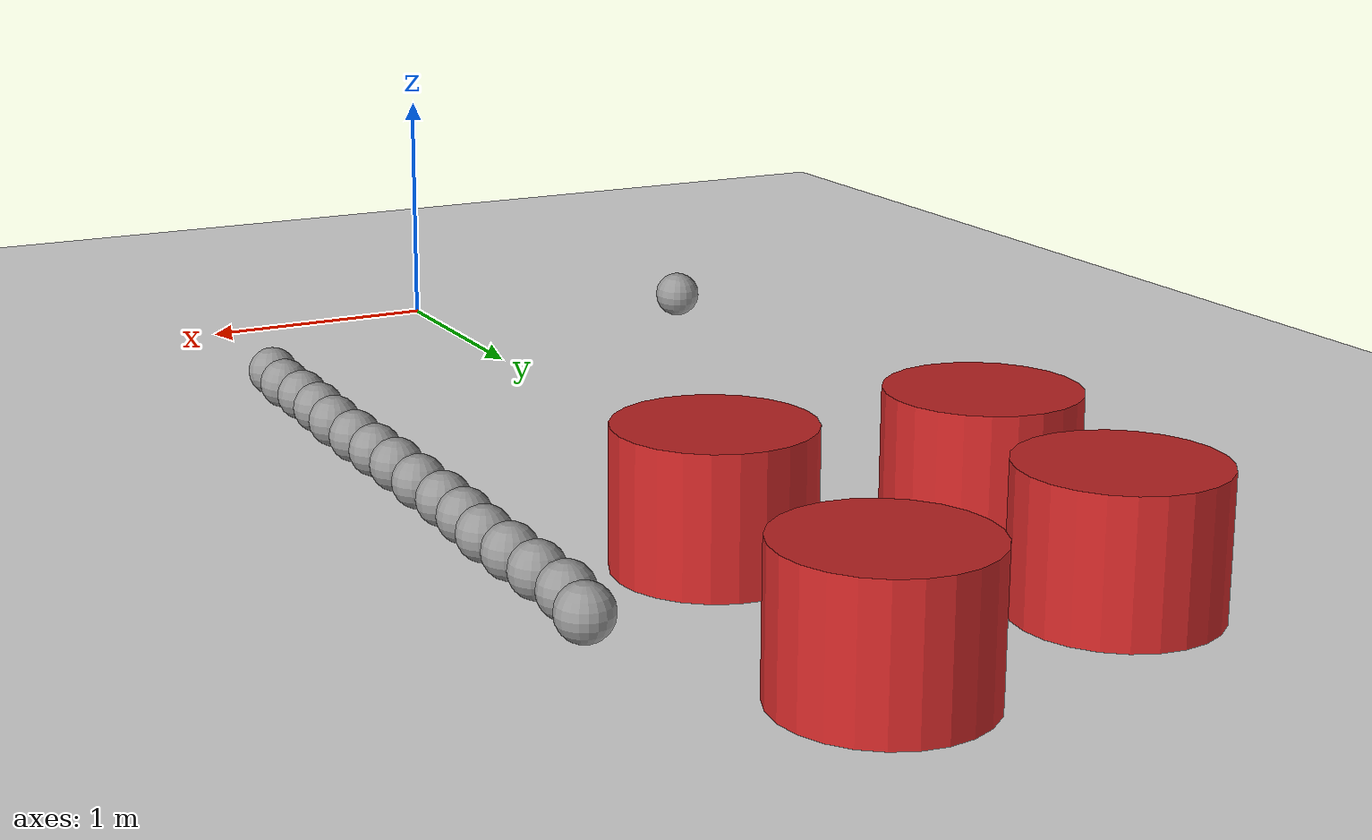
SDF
<sdf version="1.7">
 <world name="default">
  <model name="ground_plane">
   <static>1</static>
   <link name="link">
    <collision name="collision">
     <geometry><plane><normal>0 0 1</normal><size>100 100</size></plane></geometry>
     <surface>
      <contact><collide_bitmask>65535</collide_bitmask></contact>
      <friction><ode><mu>100</mu><mu2>50</mu2></ode></friction>
     </surface>
    </collision>
    <visual name="visual">
     <cast_shadows>0</cast_shadows>
     <geometry><plane><normal>0 0 1</normal><size>100 100</size></plane></geometry>
     <material>
      <script><uri>file://media/materials/scripts/gazebo.material</uri><name>Gazebo/White</name></script>
     </material>
    </visual>
   </link>
  </model>
  <model name="sphere_2">
   <link name="link_0">
    <inertial>
     <mass>1</mass>
     <inertia><ixx>0.1</ixx><ixy>0</ixy><ixz>0</ixz><iyy>0.1</iyy><iyz>0</iyz><izz>0.1</izz></inertia>
    </inertial>
    <visual name="visual">
     <geometry><sphere><radius>0.1</radius></sphere></geometry>
     <material>
      <lighting>1</lighting>
      <script><uri>file://media/materials/scripts/gazebo.material</uri><name>Gazebo/Grey</name></script>
      <shader type="pixel"><normal_map>__default__</normal_map></shader>
      <ambient>0.3 0.3 0.3 1</ambient>
      <diffuse>0.7 0.7 0.7 1</diffuse>
      <specular>0.01 0.01 0.01 1</specular>
      <emissive>0 0 0 1</emissive>
     </material>
    </visual>
    <collision name="collision">
     <geometry><sphere><radius>0.1</radius></sphere></geometry>
     <surface>
      <friction>
       <ode><mu>1</mu><mu2>1</mu2><fdir1>0 0 0</fdir1><slip1>0</slip1><slip2>0</slip2></ode>
       <torsional>
        <coefficient>1</coefficient>
        <patch_radius>0</patch_radius>
        <surface_radius>0</surface_radius>
        <use_patch_radius>1</use_patch_radius>
        <ode><slip>0</slip></ode>
       </torsional>
      </friction>
      <bounce><restitution_coefficient>0</restitution_coefficient><threshold>1e+06</threshold></bounce>
      <contact>
       <collide_without_contact>0</collide_without_contact>
       <collide_without_contact_bitmask>1</collide_without_contact_bitmask>
       <collide_bitmask>1</collide_bitmask>
       <ode>
        <soft_cfm>0</soft_cfm>
        <soft_erp>0.2</soft_erp>
        <kp>1e+13</kp>
        <kd>1</kd>
        <max_vel>0.01</max_vel>
        <min_depth>0</min_depth>
       </ode>
       <bullet>
        <split_impulse>1</split_impulse>
        <split_impulse_penetration_threshold>-0.01</split_impulse_penetration_threshold>
        <soft_cfm>0</soft_cfm>
        <soft_erp>0.2</soft_erp>
        <kp>1e+13</kp>
        <kd>1</kd>
       </bullet>
      </contact>
     </surface>
    </collision>
   </link>
   <static>0</static>
   <pose>-1.08295 0.60761 0.1 -0.067159 0.002545 0.001841</pose>
  </model>
  <model name="sphere_65">
   <link name="link_0">
    <inertial>
     <mass>1</mass>
     <inertia><ixx>0.1</ixx><ixy>0</ixy><ixz>0</ixz><iyy>0.1</iyy><iyz>0</iyz><izz>0.1</izz></inertia>
    </inertial>
    <visual name="visual">
     <geometry><sphere><radius>0.1</radius></sphere></geometry>
     <material>
      <lighting>1</lighting>
      <script><uri>file://media/materials/scripts/gazebo.material</uri><name>Gazebo/Grey</name></script>
      <shader type="pixel"><normal_map>__default__</normal_map></shader>
      <ambient>0.3 0.3 0.3 1</ambient>
      <diffuse>0.7 0.7 0.7 1</diffuse>
      <specular>0.01 0.01 0.01 1</specular>
      <emissive>0 0 0 1</emissive>
     </material>
    </visual>
    <collision name="collision">
     <geometry><sphere><radius>0.1</radius></sphere></geometry>
     <surface>
      <friction>
       <ode><mu>1</mu><mu2>1</mu2><fdir1>0 0 0</fdir1><slip1>0</slip1><slip2>0</slip2></ode>
       <torsional>
        <coefficient>1</coefficient>
        <patch_radius>0</patch_radius>
        <surface_radius>0</surface_radius>
        <use_patch_radius>1</use_patch_radius>
        <ode><slip>0</slip></ode>
       </torsional>
      </friction>
      <bounce><restitution_coefficient>0</restitution_coefficient><threshold>1e+06</threshold></bounce>
      <contact>
       <collide_without_contact>0</collide_without_contact>
       <collide_without_contact_bitmask>1</collide_without_contact_bitmask>
       <collide_bitmask>1</collide_bitmask>
       <ode>
        <soft_cfm>0</soft_cfm>
        <soft_erp>0.2</soft_erp>
        <kp>1e+13</kp>
        <kd>1</kd>
        <max_vel>0.01</max_vel>
        <min_depth>0</min_depth>
       </ode>
       <bullet>
        <split_impulse>1</split_impulse>
        <split_impulse_penetration_threshold>-0.01</split_impulse_penetration_threshold>
        <soft_cfm>0</soft_cfm>
        <soft_erp>0.2</soft_erp>
        <kp>1e+13</kp>
        <kd>1</kd>
       </bullet>
      </contact>
     </surface>
    </collision>
   </link>
   <static>0</static>
   <pose>1.08249 1.08069 0.1 0.127864 -0.026103 -0.00112</pose>
  </model>
  <model name="sphere_66">
   <link name="link_0">
    <inertial>
     <mass>1</mass>
     <inertia><ixx>0.1</ixx><ixy>0</ixy><ixz>0</ixz><iyy>0.1</iyy><iyz>0</iyz><izz>0.1</izz></inertia>
    </inertial>
    <visual name="visual">
     <geometry><sphere><radius>0.1</radius></sphere></geometry>
     <material>
      <lighting>1</lighting>
      <script><uri>file://media/materials/scripts/gazebo.material</uri><name>Gazebo/Grey</name></script>
      <shader type="pixel"><normal_map>__default__</normal_map></shader>
      <ambient>0.3 0.3 0.3 1</ambient>
      <diffuse>0.7 0.7 0.7 1</diffuse>
      <specular>0.01 0.01 0.01 1</specular>
      <emissive>0 0 0 1</emissive>
     </material>
    </visual>
    <collision name="collision">
     <geometry><sphere><radius>0.1</radius></sphere></geometry>
     <surface>
      <friction>
       <ode><mu>1</mu><mu2>1</mu2><fdir1>0 0 0</fdir1><slip1>0</slip1><slip2>0</slip2></ode>
       <torsional>
        <coefficient>1</coefficient>
        <patch_radius>0</patch_radius>
        <surface_radius>0</surface_radius>
        <use_patch_radius>1</use_patch_radius>
        <ode><slip>0</slip></ode>
       </torsional>
      </friction>
      <bounce><restitution_coefficient>0</restitution_coefficient><threshold>1e+06</threshold></bounce>
      <contact>
       <collide_without_contact>0</collide_without_contact>
       <collide_without_contact_bitmask>1</collide_without_contact_bitmask>
       <collide_bitmask>1</collide_bitmask>
       <ode>
        <soft_cfm>0</soft_cfm>
        <soft_erp>0.2</soft_erp>
        <kp>1e+13</kp>
        <kd>1</kd>
        <max_vel>0.01</max_vel>
        <min_depth>0</min_depth>
       </ode>
       <bullet>
        <split_impulse>1</split_impulse>
        <split_impulse_penetration_threshold>-0.01</split_impulse_penetration_threshold>
        <soft_cfm>0</soft_cfm>
        <soft_erp>0.2</soft_erp>
        <kp>1e+13</kp>
        <kd>1</kd>
       </bullet>
      </contact>
     </surface>
    </collision>
   </link>
   <static>0</static>
   <pose>1.09934 1.28378 0.1 -0.109971 0.005579 0.000395</pose>
  </model>
  <model name="sphere_67">
   <link name="link_0">
    <inertial>
     <mass>1</mass>
     <inertia><ixx>0.1</ixx><ixy>0</ixy><ixz>0</ixz><iyy>0.1</iyy><iyz>0</iyz><izz>0.1</izz></inertia>
    </inertial>
    <visual name="visual">
     <geometry><sphere><radius>0.1</radius></sphere></geometry>
     <material>
      <lighting>1</lighting>
      <script><uri>file://media/materials/scripts/gazebo.material</uri><name>Gazebo/Grey</name></script>
      <shader type="pixel"><normal_map>__default__</normal_map></shader>
      <ambient>0.3 0.3 0.3 1</ambient>
      <diffuse>0.7 0.7 0.7 1</diffuse>
      <specular>0.01 0.01 0.01 1</specular>
      <emissive>0 0 0 1</emissive>
     </material>
    </visual>
    <collision name="collision">
     <geometry><sphere><radius>0.1</radius></sphere></geometry>
     <surface>
      <friction>
       <ode><mu>1</mu><mu2>1</mu2><fdir1>0 0 0</fdir1><slip1>0</slip1><slip2>0</slip2></ode>
       <torsional>
        <coefficient>1</coefficient>
        <patch_radius>0</patch_radius>
        <surface_radius>0</surface_radius>
        <use_patch_radius>1</use_patch_radius>
        <ode><slip>0</slip></ode>
       </torsional>
      </friction>
      <bounce><restitution_coefficient>0</restitution_coefficient><threshold>1e+06</threshold></bounce>
      <contact>
       <collide_without_contact>0</collide_without_contact>
       <collide_without_contact_bitmask>1</collide_without_contact_bitmask>
       <collide_bitmask>1</collide_bitmask>
       <ode>
        <soft_cfm>0</soft_cfm>
        <soft_erp>0.2</soft_erp>
        <kp>1e+13</kp>
        <kd>1</kd>
        <max_vel>0.01</max_vel>
        <min_depth>0</min_depth>
       </ode>
       <bullet>
        <split_impulse>1</split_impulse>
        <split_impulse_penetration_threshold>-0.01</split_impulse_penetration_threshold>
        <soft_cfm>0</soft_cfm>
        <soft_erp>0.2</soft_erp>
        <kp>1e+13</kp>
        <kd>1</kd>
       </bullet>
      </contact>
     </surface>
    </collision>
   </link>
   <static>0</static>
   <pose>1.09407 1.48459 0.1 -0.006813 -0.000484 1.7e-05</pose>
  </model>
  <model name="sphere_68">
   <link name="link_0">
    <inertial>
     <mass>1</mass>
     <inertia><ixx>0.1</ixx><ixy>0</ixy><ixz>0</ixz><iyy>0.1</iyy><iyz>0</iyz><izz>0.1</izz></inertia>
    </inertial>
    <visual name="visual">
     <geometry><sphere><radius>0.1</radius></sphere></geometry>
     <material>
      <lighting>1</lighting>
      <script><uri>file://media/materials/scripts/gazebo.material</uri><name>Gazebo/Grey</name></script>
      <shader type="pixel"><normal_map>__default__</normal_map></shader>
      <ambient>0.3 0.3 0.3 1</ambient>
      <diffuse>0.7 0.7 0.7 1</diffuse>
      <specular>0.01 0.01 0.01 1</specular>
      <emissive>0 0 0 1</emissive>
     </material>
    </visual>
    <collision name="collision">
     <geometry><sphere><radius>0.1</radius></sphere></geometry>
     <surface>
      <friction>
       <ode><mu>1</mu><mu2>1</mu2><fdir1>0 0 0</fdir1><slip1>0</slip1><slip2>0</slip2></ode>
       <torsional>
        <coefficient>1</coefficient>
        <patch_radius>0</patch_radius>
        <surface_radius>0</surface_radius>
        <use_patch_radius>1</use_patch_radius>
        <ode><slip>0</slip></ode>
       </torsional>
      </friction>
      <bounce><restitution_coefficient>0</restitution_coefficient><threshold>1e+06</threshold></bounce>
      <contact>
       <collide_without_contact>0</collide_without_contact>
       <collide_without_contact_bitmask>1</collide_without_contact_bitmask>
       <collide_bitmask>1</collide_bitmask>
       <ode>
        <soft_cfm>0</soft_cfm>
        <soft_erp>0.2</soft_erp>
        <kp>1e+13</kp>
        <kd>1</kd>
        <max_vel>0.01</max_vel>
        <min_depth>0</min_depth>
       </ode>
       <bullet>
        <split_impulse>1</split_impulse>
        <split_impulse_penetration_threshold>-0.01</split_impulse_penetration_threshold>
        <soft_cfm>0</soft_cfm>
        <soft_erp>0.2</soft_erp>
        <kp>1e+13</kp>
        <kd>1</kd>
       </bullet>
      </contact>
     </surface>
    </collision>
   </link>
   <static>0</static>
   <pose>1.09676 1.68566 0.1 -0.008814 0.000117 4e-06</pose>
  </model>
  <model name="sphere_69">
   <link name="link_0">
    <inertial>
     <mass>1</mass>
     <inertia><ixx>0.1</ixx><ixy>0</ixy><ixz>0</ixz><iyy>0.1</iyy><iyz>0</iyz><izz>0.1</izz></inertia>
    </inertial>
    <visual name="visual">
     <geometry><sphere><radius>0.1</radius></sphere></geometry>
     <material>
      <lighting>1</lighting>
      <script><uri>file://media/materials/scripts/gazebo.material</uri><name>Gazebo/Grey</name></script>
      <shader type="pixel"><normal_map>__default__</normal_map></shader>
      <ambient>0.3 0.3 0.3 1</ambient>
      <diffuse>0.7 0.7 0.7 1</diffuse>
      <specular>0.01 0.01 0.01 1</specular>
      <emissive>0 0 0 1</emissive>
     </material>
    </visual>
    <collision name="collision">
     <geometry><sphere><radius>0.1</radius></sphere></geometry>
     <surface>
      <friction>
       <ode><mu>1</mu><mu2>1</mu2><fdir1>0 0 0</fdir1><slip1>0</slip1><slip2>0</slip2></ode>
       <torsional>
        <coefficient>1</coefficient>
        <patch_radius>0</patch_radius>
        <surface_radius>0</surface_radius>
        <use_patch_radius>1</use_patch_radius>
        <ode><slip>0</slip></ode>
       </torsional>
      </friction>
      <bounce><restitution_coefficient>0</restitution_coefficient><threshold>1e+06</threshold></bounce>
      <contact>
       <collide_without_contact>0</collide_without_contact>
       <collide_without_contact_bitmask>1</collide_without_contact_bitmask>
       <collide_bitmask>1</collide_bitmask>
       <ode>
        <soft_cfm>0</soft_cfm>
        <soft_erp>0.2</soft_erp>
        <kp>1e+13</kp>
        <kd>1</kd>
        <max_vel>0.01</max_vel>
        <min_depth>0</min_depth>
       </ode>
       <bullet>
        <split_impulse>1</split_impulse>
        <split_impulse_penetration_threshold>-0.01</split_impulse_penetration_threshold>
        <soft_cfm>0</soft_cfm>
        <soft_erp>0.2</soft_erp>
        <kp>1e+13</kp>
        <kd>1</kd>
       </bullet>
      </contact>
     </surface>
    </collision>
   </link>
   <static>0</static>
   <pose>1.10553 1.89229 0.1 0 -0 0</pose>
  </model>
  <model name="sphere_70">
   <link name="link_0">
    <inertial>
     <mass>1</mass>
     <inertia><ixx>0.1</ixx><ixy>0</ixy><ixz>0</ixz><iyy>0.1</iyy><iyz>0</iyz><izz>0.1</izz></inertia>
    </inertial>
    <visual name="visual">
     <geometry><sphere><radius>0.1</radius></sphere></geometry>
     <material>
      <lighting>1</lighting>
      <script><uri>file://media/materials/scripts/gazebo.material</uri><name>Gazebo/Grey</name></script>
      <shader type="pixel"><normal_map>__default__</normal_map></shader>
      <ambient>0.3 0.3 0.3 1</ambient>
      <diffuse>0.7 0.7 0.7 1</diffuse>
      <specular>0.01 0.01 0.01 1</specular>
      <emissive>0 0 0 1</emissive>
     </material>
    </visual>
    <collision name="collision">
     <geometry><sphere><radius>0.1</radius></sphere></geometry>
     <surface>
      <friction>
       <ode><mu>1</mu><mu2>1</mu2><fdir1>0 0 0</fdir1><slip1>0</slip1><slip2>0</slip2></ode>
       <torsional>
        <coefficient>1</coefficient>
        <patch_radius>0</patch_radius>
        <surface_radius>0</surface_radius>
        <use_patch_radius>1</use_patch_radius>
        <ode><slip>0</slip></ode>
       </torsional>
      </friction>
      <bounce><restitution_coefficient>0</restitution_coefficient><threshold>1e+06</threshold></bounce>
      <contact>
       <collide_without_contact>0</collide_without_contact>
       <collide_without_contact_bitmask>1</collide_without_contact_bitmask>
       <collide_bitmask>1</collide_bitmask>
       <ode>
        <soft_cfm>0</soft_cfm>
        <soft_erp>0.2</soft_erp>
        <kp>1e+13</kp>
        <kd>1</kd>
        <max_vel>0.01</max_vel>
        <min_depth>0</min_depth>
       </ode>
       <bullet>
        <split_impulse>1</split_impulse>
        <split_impulse_penetration_threshold>-0.01</split_impulse_penetration_threshold>
        <soft_cfm>0</soft_cfm>
        <soft_erp>0.2</soft_erp>
        <kp>1e+13</kp>
        <kd>1</kd>
       </bullet>
      </contact>
     </surface>
    </collision>
   </link>
   <static>0</static>
   <pose>1.10494 2.11953 0.1 0 -0 0</pose>
  </model>
  <model name="sphere_71">
   <link name="link_0">
    <inertial>
     <mass>1</mass>
     <inertia><ixx>0.1</ixx><ixy>0</ixy><ixz>0</ixz><iyy>0.1</iyy><iyz>0</iyz><izz>0.1</izz></inertia>
    </inertial>
    <visual name="visual">
     <geometry><sphere><radius>0.1</radius></sphere></geometry>
     <material>
      <lighting>1</lighting>
      <script><uri>file://media/materials/scripts/gazebo.material</uri><name>Gazebo/Grey</name></script>
      <shader type="pixel"><normal_map>__default__</normal_map></shader>
      <ambient>0.3 0.3 0.3 1</ambient>
      <diffuse>0.7 0.7 0.7 1</diffuse>
      <specular>0.01 0.01 0.01 1</specular>
      <emissive>0 0 0 1</emissive>
     </material>
    </visual>
    <collision name="collision">
     <geometry><sphere><radius>0.1</radius></sphere></geometry>
     <surface>
      <friction>
       <ode><mu>1</mu><mu2>1</mu2><fdir1>0 0 0</fdir1><slip1>0</slip1><slip2>0</slip2></ode>
       <torsional>
        <coefficient>1</coefficient>
        <patch_radius>0</patch_radius>
        <surface_radius>0</surface_radius>
        <use_patch_radius>1</use_patch_radius>
        <ode><slip>0</slip></ode>
       </torsional>
      </friction>
      <bounce><restitution_coefficient>0</restitution_coefficient><threshold>1e+06</threshold></bounce>
      <contact>
       <collide_without_contact>0</collide_without_contact>
       <collide_without_contact_bitmask>1</collide_without_contact_bitmask>
       <collide_bitmask>1</collide_bitmask>
       <ode>
        <soft_cfm>0</soft_cfm>
        <soft_erp>0.2</soft_erp>
        <kp>1e+13</kp>
        <kd>1</kd>
        <max_vel>0.01</max_vel>
        <min_depth>0</min_depth>
       </ode>
       <bullet>
        <split_impulse>1</split_impulse>
        <split_impulse_penetration_threshold>-0.01</split_impulse_penetration_threshold>
        <soft_cfm>0</soft_cfm>
        <soft_erp>0.2</soft_erp>
        <kp>1e+13</kp>
        <kd>1</kd>
       </bullet>
      </contact>
     </surface>
    </collision>
   </link>
   <static>0</static>
   <pose>1.10115 2.32456 0.1 0 -0 0</pose>
  </model>
  <model name="sphere_72">
   <link name="link_0">
    <inertial>
     <mass>1</mass>
     <inertia><ixx>0.1</ixx><ixy>0</ixy><ixz>0</ixz><iyy>0.1</iyy><iyz>0</iyz><izz>0.1</izz></inertia>
    </inertial>
    <visual name="visual">
     <geometry><sphere><radius>0.1</radius></sphere></geometry>
     <material>
      <lighting>1</lighting>
      <script><uri>file://media/materials/scripts/gazebo.material</uri><name>Gazebo/Grey</name></script>
      <shader type="pixel"><normal_map>__default__</normal_map></shader>
      <ambient>0.3 0.3 0.3 1</ambient>
      <diffuse>0.7 0.7 0.7 1</diffuse>
      <specular>0.01 0.01 0.01 1</specular>
      <emissive>0 0 0 1</emissive>
     </material>
    </visual>
    <collision name="collision">
     <geometry><sphere><radius>0.1</radius></sphere></geometry>
     <surface>
      <friction>
       <ode><mu>1</mu><mu2>1</mu2><fdir1>0 0 0</fdir1><slip1>0</slip1><slip2>0</slip2></ode>
       <torsional>
        <coefficient>1</coefficient>
        <patch_radius>0</patch_radius>
        <surface_radius>0</surface_radius>
        <use_patch_radius>1</use_patch_radius>
        <ode><slip>0</slip></ode>
       </torsional>
      </friction>
      <bounce><restitution_coefficient>0</restitution_coefficient><threshold>1e+06</threshold></bounce>
      <contact>
       <collide_without_contact>0</collide_without_contact>
       <collide_without_contact_bitmask>1</collide_without_contact_bitmask>
       <collide_bitmask>1</collide_bitmask>
       <ode>
        <soft_cfm>0</soft_cfm>
        <soft_erp>0.2</soft_erp>
        <kp>1e+13</kp>
        <kd>1</kd>
        <max_vel>0.01</max_vel>
        <min_depth>0</min_depth>
       </ode>
       <bullet>
        <split_impulse>1</split_impulse>
        <split_impulse_penetration_threshold>-0.01</split_impulse_penetration_threshold>
        <soft_cfm>0</soft_cfm>
        <soft_erp>0.2</soft_erp>
        <kp>1e+13</kp>
        <kd>1</kd>
       </bullet>
      </contact>
     </surface>
    </collision>
   </link>
   <static>0</static>
   <pose>1.09595 2.52689 0.1 0 -0 0</pose>
  </model>
  <model name="sphere_73">
   <link name="link_0">
    <inertial>
     <mass>1</mass>
     <inertia><ixx>0.1</ixx><ixy>0</ixy><ixz>0</ixz><iyy>0.1</iyy><iyz>0</iyz><izz>0.1</izz></inertia>
    </inertial>
    <visual name="visual">
     <geometry><sphere><radius>0.1</radius></sphere></geometry>
     <material>
      <lighting>1</lighting>
      <script><uri>file://media/materials/scripts/gazebo.material</uri><name>Gazebo/Grey</name></script>
      <shader type="pixel"><normal_map>__default__</normal_map></shader>
      <ambient>0.3 0.3 0.3 1</ambient>
      <diffuse>0.7 0.7 0.7 1</diffuse>
      <specular>0.01 0.01 0.01 1</specular>
      <emissive>0 0 0 1</emissive>
     </material>
    </visual>
    <collision name="collision">
     <geometry><sphere><radius>0.1</radius></sphere></geometry>
     <surface>
      <friction>
       <ode><mu>1</mu><mu2>1</mu2><fdir1>0 0 0</fdir1><slip1>0</slip1><slip2>0</slip2></ode>
       <torsional>
        <coefficient>1</coefficient>
        <patch_radius>0</patch_radius>
        <surface_radius>0</surface_radius>
        <use_patch_radius>1</use_patch_radius>
        <ode><slip>0</slip></ode>
       </torsional>
      </friction>
      <bounce><restitution_coefficient>0</restitution_coefficient><threshold>1e+06</threshold></bounce>
      <contact>
       <collide_without_contact>0</collide_without_contact>
       <collide_without_contact_bitmask>1</collide_without_contact_bitmask>
       <collide_bitmask>1</collide_bitmask>
       <ode>
        <soft_cfm>0</soft_cfm>
        <soft_erp>0.2</soft_erp>
        <kp>1e+13</kp>
        <kd>1</kd>
        <max_vel>0.01</max_vel>
        <min_depth>0</min_depth>
       </ode>
       <bullet>
        <split_impulse>1</split_impulse>
        <split_impulse_penetration_threshold>-0.01</split_impulse_penetration_threshold>
        <soft_cfm>0</soft_cfm>
        <soft_erp>0.2</soft_erp>
        <kp>1e+13</kp>
        <kd>1</kd>
       </bullet>
      </contact>
     </surface>
    </collision>
   </link>
   <static>0</static>
   <pose>1.09848 2.75257 0.1 0 -0 0</pose>
  </model>
  <model name="sphere_74">
   <link name="link_0">
    <inertial>
     <mass>1</mass>
     <inertia><ixx>0.1</ixx><ixy>0</ixy><ixz>0</ixz><iyy>0.1</iyy><iyz>0</iyz><izz>0.1</izz></inertia>
    </inertial>
    <visual name="visual">
     <geometry><sphere><radius>0.1</radius></sphere></geometry>
     <material>
      <lighting>1</lighting>
      <script><uri>file://media/materials/scripts/gazebo.material</uri><name>Gazebo/Grey</name></script>
      <shader type="pixel"><normal_map>__default__</normal_map></shader>
      <ambient>0.3 0.3 0.3 1</ambient>
      <diffuse>0.7 0.7 0.7 1</diffuse>
      <specular>0.01 0.01 0.01 1</specular>
      <emissive>0 0 0 1</emissive>
     </material>
    </visual>
    <collision name="collision">
     <geometry><sphere><radius>0.1</radius></sphere></geometry>
     <surface>
      <friction>
       <ode><mu>1</mu><mu2>1</mu2><fdir1>0 0 0</fdir1><slip1>0</slip1><slip2>0</slip2></ode>
       <torsional>
        <coefficient>1</coefficient>
        <patch_radius>0</patch_radius>
        <surface_radius>0</surface_radius>
        <use_patch_radius>1</use_patch_radius>
        <ode><slip>0</slip></ode>
       </torsional>
      </friction>
      <bounce><restitution_coefficient>0</restitution_coefficient><threshold>1e+06</threshold></bounce>
      <contact>
       <collide_without_contact>0</collide_without_contact>
       <collide_without_contact_bitmask>1</collide_without_contact_bitmask>
       <collide_bitmask>1</collide_bitmask>
       <ode>
        <soft_cfm>0</soft_cfm>
        <soft_erp>0.2</soft_erp>
        <kp>1e+13</kp>
        <kd>1</kd>
        <max_vel>0.01</max_vel>
        <min_depth>0</min_depth>
       </ode>
       <bullet>
        <split_impulse>1</split_impulse>
        <split_impulse_penetration_threshold>-0.01</split_impulse_penetration_threshold>
        <soft_cfm>0</soft_cfm>
        <soft_erp>0.2</soft_erp>
        <kp>1e+13</kp>
        <kd>1</kd>
       </bullet>
      </contact>
     </surface>
    </collision>
   </link>
   <static>0</static>
   <pose>1.09576 2.97506 0.1 0.045649 -0.002602 0.001322</pose>
  </model>
  <model name="sphere_75">
   <link name="link_0">
    <inertial>
     <mass>1</mass>
     <inertia><ixx>0.1</ixx><ixy>0</ixy><ixz>0</ixz><iyy>0.1</iyy><iyz>0</iyz><izz>0.1</izz></inertia>
    </inertial>
    <visual name="visual">
     <geometry><sphere><radius>0.1</radius></sphere></geometry>
     <material>
      <lighting>1</lighting>
      <script><uri>file://media/materials/scripts/gazebo.material</uri><name>Gazebo/Grey</name></script>
      <shader type="pixel"><normal_map>__default__</normal_map></shader>
      <ambient>0.3 0.3 0.3 1</ambient>
      <diffuse>0.7 0.7 0.7 1</diffuse>
      <specular>0.01 0.01 0.01 1</specular>
      <emissive>0 0 0 1</emissive>
     </material>
    </visual>
    <collision name="collision">
     <geometry><sphere><radius>0.1</radius></sphere></geometry>
     <surface>
      <friction>
       <ode><mu>1</mu><mu2>1</mu2><fdir1>0 0 0</fdir1><slip1>0</slip1><slip2>0</slip2></ode>
       <torsional>
        <coefficient>1</coefficient>
        <patch_radius>0</patch_radius>
        <surface_radius>0</surface_radius>
        <use_patch_radius>1</use_patch_radius>
        <ode><slip>0</slip></ode>
       </torsional>
      </friction>
      <bounce><restitution_coefficient>0</restitution_coefficient><threshold>1e+06</threshold></bounce>
      <contact>
       <collide_without_contact>0</collide_without_contact>
       <collide_without_contact_bitmask>1</collide_without_contact_bitmask>
       <collide_bitmask>1</collide_bitmask>
       <ode>
        <soft_cfm>0</soft_cfm>
        <soft_erp>0.2</soft_erp>
        <kp>1e+13</kp>
        <kd>1</kd>
        <max_vel>0.01</max_vel>
        <min_depth>0</min_depth>
       </ode>
       <bullet>
        <split_impulse>1</split_impulse>
        <split_impulse_penetration_threshold>-0.01</split_impulse_penetration_threshold>
        <soft_cfm>0</soft_cfm>
        <soft_erp>0.2</soft_erp>
        <kp>1e+13</kp>
        <kd>1</kd>
       </bullet>
      </contact>
     </surface>
    </collision>
   </link>
   <static>0</static>
   <pose>1.10154 3.17667 0.1 -0.016857 0.001558 -0.00174</pose>
  </model>
  <model name="sphere_76">
   <link name="link_0">
    <inertial>
     <mass>1</mass>
     <inertia><ixx>0.1</ixx><ixy>0</ixy><ixz>0</ixz><iyy>0.1</iyy><iyz>0</iyz><izz>0.1</izz></inertia>
    </inertial>
    <visual name="visual">
     <geometry><sphere><radius>0.1</radius></sphere></geometry>
     <material>
      <lighting>1</lighting>
      <script><uri>file://media/materials/scripts/gazebo.material</uri><name>Gazebo/Grey</name></script>
      <shader type="pixel"><normal_map>__default__</normal_map></shader>
      <ambient>0.3 0.3 0.3 1</ambient>
      <diffuse>0.7 0.7 0.7 1</diffuse>
      <specular>0.01 0.01 0.01 1</specular>
      <emissive>0 0 0 1</emissive>
     </material>
    </visual>
    <collision name="collision">
     <geometry><sphere><radius>0.1</radius></sphere></geometry>
     <surface>
      <friction>
       <ode><mu>1</mu><mu2>1</mu2><fdir1>0 0 0</fdir1><slip1>0</slip1><slip2>0</slip2></ode>
       <torsional>
        <coefficient>1</coefficient>
        <patch_radius>0</patch_radius>
        <surface_radius>0</surface_radius>
        <use_patch_radius>1</use_patch_radius>
        <ode><slip>0</slip></ode>
       </torsional>
      </friction>
      <bounce><restitution_coefficient>0</restitution_coefficient><threshold>1e+06</threshold></bounce>
      <contact>
       <collide_without_contact>0</collide_without_contact>
       <collide_without_contact_bitmask>1</collide_without_contact_bitmask>
       <collide_bitmask>1</collide_bitmask>
       <ode>
        <soft_cfm>0</soft_cfm>
        <soft_erp>0.2</soft_erp>
        <kp>1e+13</kp>
        <kd>1</kd>
        <max_vel>0.01</max_vel>
        <min_depth>0</min_depth>
       </ode>
       <bullet>
        <split_impulse>1</split_impulse>
        <split_impulse_penetration_threshold>-0.01</split_impulse_penetration_threshold>
        <soft_cfm>0</soft_cfm>
        <soft_erp>0.2</soft_erp>
        <kp>1e+13</kp>
        <kd>1</kd>
       </bullet>
      </contact>
     </surface>
    </collision>
   </link>
   <static>0</static>
   <pose>1.1141 3.37629 0.1 -0.008776 0.004291 -0.000591</pose>
  </model>
  <model name="sphere_77">
   <link name="link_0">
    <inertial>
     <mass>1</mass>
     <inertia><ixx>0.1</ixx><ixy>0</ixy><ixz>0</ixz><iyy>0.1</iyy><iyz>0</iyz><izz>0.1</izz></inertia>
    </inertial>
    <visual name="visual">
     <geometry><sphere><radius>0.1</radius></sphere></geometry>
     <material>
      <lighting>1</lighting>
      <script><uri>file://media/materials/scripts/gazebo.material</uri><name>Gazebo/Grey</name></script>
      <shader type="pixel"><normal_map>__default__</normal_map></shader>
      <ambient>0.3 0.3 0.3 1</ambient>
      <diffuse>0.7 0.7 0.7 1</diffuse>
      <specular>0.01 0.01 0.01 1</specular>
      <emissive>0 0 0 1</emissive>
     </material>
    </visual>
    <collision name="collision">
     <geometry><sphere><radius>0.1</radius></sphere></geometry>
     <surface>
      <friction>
       <ode><mu>1</mu><mu2>1</mu2><fdir1>0 0 0</fdir1><slip1>0</slip1><slip2>0</slip2></ode>
       <torsional>
        <coefficient>1</coefficient>
        <patch_radius>0</patch_radius>
        <surface_radius>0</surface_radius>
        <use_patch_radius>1</use_patch_radius>
        <ode><slip>0</slip></ode>
       </torsional>
      </friction>
      <bounce><restitution_coefficient>0</restitution_coefficient><threshold>1e+06</threshold></bounce>
      <contact>
       <collide_without_contact>0</collide_without_contact>
       <collide_without_contact_bitmask>1</collide_without_contact_bitmask>
       <collide_bitmask>1</collide_bitmask>
       <ode>
        <soft_cfm>0</soft_cfm>
        <soft_erp>0.2</soft_erp>
        <kp>1e+13</kp>
        <kd>1</kd>
        <max_vel>0.01</max_vel>
        <min_depth>0</min_depth>
       </ode>
       <bullet>
        <split_impulse>1</split_impulse>
        <split_impulse_penetration_threshold>-0.01</split_impulse_penetration_threshold>
        <soft_cfm>0</soft_cfm>
        <soft_erp>0.2</soft_erp>
        <kp>1e+13</kp>
        <kd>1</kd>
       </bullet>
      </contact>
     </surface>
    </collision>
   </link>
   <static>0</static>
   <pose>1.10887 3.57638 0.1 -0.032287 0.000863 0.002749</pose>
  </model>
  <model name="sphere_78">
   <link name="link_0">
    <inertial>
     <mass>1</mass>
     <inertia><ixx>0.1</ixx><ixy>0</ixy><ixz>0</ixz><iyy>0.1</iyy><iyz>0</iyz><izz>0.1</izz></inertia>
    </inertial>
    <visual name="visual">
     <geometry><sphere><radius>0.1</radius></sphere></geometry>
     <material>
      <lighting>1</lighting>
      <script><uri>file://media/materials/scripts/gazebo.material</uri><name>Gazebo/Grey</name></script>
      <shader type="pixel"><normal_map>__default__</normal_map></shader>
      <ambient>0.3 0.3 0.3 1</ambient>
      <diffuse>0.7 0.7 0.7 1</diffuse>
      <specular>0.01 0.01 0.01 1</specular>
      <emissive>0 0 0 1</emissive>
     </material>
    </visual>
    <collision name="collision">
     <geometry><sphere><radius>0.1</radius></sphere></geometry>
     <surface>
      <friction>
       <ode><mu>1</mu><mu2>1</mu2><fdir1>0 0 0</fdir1><slip1>0</slip1><slip2>0</slip2></ode>
       <torsional>
        <coefficient>1</coefficient>
        <patch_radius>0</patch_radius>
        <surface_radius>0</surface_radius>
        <use_patch_radius>1</use_patch_radius>
        <ode><slip>0</slip></ode>
       </torsional>
      </friction>
      <bounce><restitution_coefficient>0</restitution_coefficient><threshold>1e+06</threshold></bounce>
      <contact>
       <collide_without_contact>0</collide_without_contact>
       <collide_without_contact_bitmask>1</collide_without_contact_bitmask>
       <collide_bitmask>1</collide_bitmask>
       <ode>
        <soft_cfm>0</soft_cfm>
        <soft_erp>0.2</soft_erp>
        <kp>1e+13</kp>
        <kd>1</kd>
        <max_vel>0.01</max_vel>
        <min_depth>0</min_depth>
       </ode>
       <bullet>
        <split_impulse>1</split_impulse>
        <split_impulse_penetration_threshold>-0.01</split_impulse_penetration_threshold>
        <soft_cfm>0</soft_cfm>
        <soft_erp>0.2</soft_erp>
        <kp>1e+13</kp>
        <kd>1</kd>
       </bullet>
      </contact>
     </surface>
    </collision>
   </link>
   <static>0</static>
   <pose>1.10452 3.77865 0.1 -0.024314 -0.000319 0.000234</pose>
  </model>
  <model name="sphere_79">
   <link name="link_0">
    <inertial>
     <mass>1</mass>
     <inertia><ixx>0.1</ixx><ixy>0</ixy><ixz>0</ixz><iyy>0.1</iyy><iyz>0</iyz><izz>0.1</izz></inertia>
    </inertial>
    <visual name="visual">
     <geometry><sphere><radius>0.1</radius></sphere></geometry>
     <material>
      <lighting>1</lighting>
      <script><uri>file://media/materials/scripts/gazebo.material</uri><name>Gazebo/Grey</name></script>
      <shader type="pixel"><normal_map>__default__</normal_map></shader>
      <ambient>0.3 0.3 0.3 1</ambient>
      <diffuse>0.7 0.7 0.7 1</diffuse>
      <specular>0.01 0.01 0.01 1</specular>
      <emissive>0 0 0 1</emissive>
     </material>
    </visual>
    <collision name="collision">
     <geometry><sphere><radius>0.1</radius></sphere></geometry>
     <surface>
      <friction>
       <ode><mu>1</mu><mu2>1</mu2><fdir1>0 0 0</fdir1><slip1>0</slip1><slip2>0</slip2></ode>
       <torsional>
        <coefficient>1</coefficient>
        <patch_radius>0</patch_radius>
        <surface_radius>0</surface_radius>
        <use_patch_radius>1</use_patch_radius>
        <ode><slip>0</slip></ode>
       </torsional>
      </friction>
      <bounce><restitution_coefficient>0</restitution_coefficient><threshold>1e+06</threshold></bounce>
      <contact>
       <collide_without_contact>0</collide_without_contact>
       <collide_without_contact_bitmask>1</collide_without_contact_bitmask>
       <collide_bitmask>1</collide_bitmask>
       <ode>
        <soft_cfm>0</soft_cfm>
        <soft_erp>0.2</soft_erp>
        <kp>1e+13</kp>
        <kd>1</kd>
        <max_vel>0.01</max_vel>
        <min_depth>0</min_depth>
       </ode>
       <bullet>
        <split_impulse>1</split_impulse>
        <split_impulse_penetration_threshold>-0.01</split_impulse_penetration_threshold>
        <soft_cfm>0</soft_cfm>
        <soft_erp>0.2</soft_erp>
        <kp>1e+13</kp>
        <kd>1</kd>
       </bullet>
      </contact>
     </surface>
    </collision>
   </link>
   <static>0</static>
   <pose>1.10109 3.98864 0.1 0.015643 -0.00483 0.002481</pose>
  </model>
  <model name="sphere_116">
   <link name="link_0">
    <inertial>
     <mass>1</mass>
     <inertia><ixx>0.1</ixx><ixy>0</ixy><ixz>0</ixz><iyy>0.1</iyy><iyz>0</iyz><izz>0.1</izz></inertia>
    </inertial>
    <visual name="visual">
     <geometry><sphere><radius>0.1</radius></sphere></geometry>
     <material>
      <lighting>1</lighting>
      <script><uri>file://media/materials/scripts/gazebo.material</uri><name>Gazebo/Grey</name></script>
      <shader type="pixel"><normal_map>__default__</normal_map></shader>
      <ambient>0.3 0.3 0.3 1</ambient>
      <diffuse>0.7 0.7 0.7 1</diffuse>
      <specular>0.01 0.01 0.01 1</specular>
      <emissive>0 0 0 1</emissive>
     </material>
    </visual>
    <collision name="collision">
     <geometry><sphere><radius>0.1</radius></sphere></geometry>
     <surface>
      <friction>
       <ode><mu>1</mu><mu2>1</mu2><fdir1>0 0 0</fdir1><slip1>0</slip1><slip2>0</slip2></ode>
       <torsional>
        <coefficient>1</coefficient>
        <patch_radius>0</patch_radius>
        <surface_radius>0</surface_radius>
        <use_patch_radius>1</use_patch_radius>
        <ode><slip>0</slip></ode>
       </torsional>
      </friction>
      <bounce><restitution_coefficient>0</restitution_coefficient><threshold>1e+06</threshold></bounce>
      <contact>
       <collide_without_contact>0</collide_without_contact>
       <collide_without_contact_bitmask>1</collide_without_contact_bitmask>
       <collide_bitmask>1</collide_bitmask>
       <ode>
        <soft_cfm>0</soft_cfm>
        <soft_erp>0.2</soft_erp>
        <kp>1e+13</kp>
        <kd>1</kd>
        <max_vel>0.01</max_vel>
        <min_depth>0</min_depth>
       </ode>
       <bullet>
        <split_impulse>1</split_impulse>
        <split_impulse_penetration_threshold>-0.01</split_impulse_penetration_threshold>
        <soft_cfm>0</soft_cfm>
        <soft_erp>0.2</soft_erp>
        <kp>1e+13</kp>
        <kd>1</kd>
       </bullet>
      </contact>
     </surface>
    </collision>
   </link>
   <static>0</static>
   <pose>1.13282 4.18786 0.1 -0.017123 0.005887 0.003289</pose>
  </model>
  <model name="model8.4_1">
   <link name="link_1">
    <inertial>
     <mass>1</mass>
     <inertia><ixx>0.145833</ixx><ixy>0</ixy><ixz>0</ixz><iyy>0.145833</iyy><iyz>0</iyz><izz>0.125</izz></inertia>
    </inertial>
    <visual name="visual">
     <geometry><cylinder><radius>0.35</radius><length>0.5</length></cylinder></geometry>
     <material>
      <lighting>1</lighting>
      <script><uri>file://media/materials/scripts/gazebo.material</uri><name>Gazebo/Red</name></script>
      <shader type="pixel"><normal_map>__default__</normal_map></shader>
      <ambient>0.808 0.361 0 1</ambient>
      <diffuse>0.7 0.7 0.7 1</diffuse>
      <specular>0.01 0.01 0.01 1</specular>
      <emissive>0 0 0 1</emissive>
     </material>
    </visual>
    <collision name="collision">
     <geometry><cylinder><radius>0.35</radius><length>0.5</length></cylinder></geometry>
     <surface>
      <friction>
       <ode><mu>1</mu><mu2>1</mu2><fdir1>0 0 0</fdir1><slip1>0</slip1><slip2>0</slip2></ode>
       <torsional>
        <coefficient>1</coefficient>
        <patch_radius>0</patch_radius>
        <surface_radius>0</surface_radius>
        <use_patch_radius>1</use_patch_radius>
        <ode><slip>0</slip></ode>
       </torsional>
      </friction>
      <bounce><restitution_coefficient>0</restitution_coefficient><threshold>1e+06</threshold></bounce>
      <contact>
       <collide_without_contact>0</collide_without_contact>
       <collide_without_contact_bitmask>1</collide_without_contact_bitmask>
       <collide_bitmask>1</collide_bitmask>
       <ode>
        <soft_cfm>0</soft_cfm>
        <soft_erp>0.2</soft_erp>
        <kp>1e+13</kp>
        <kd>1</kd>
        <max_vel>0.01</max_vel>
        <min_depth>0</min_depth>
       </ode>
       <bullet>
        <split_impulse>1</split_impulse>
        <split_impulse_penetration_threshold>-0.01</split_impulse_penetration_threshold>
        <soft_cfm>0</soft_cfm>
        <soft_erp>0.2</soft_erp>
        <kp>1e+13</kp>
        <kd>1</kd>
       </bullet>
      </contact>
     </surface>
    </collision>
   </link>
   <static>0</static>
   <pose>-0.477179 4.70525 0.249999 0 -0 0</pose>
  </model>
  <model name="model8.4_0">
   <link name="link_1">
    <inertial>
     <mass>1</mass>
     <inertia><ixx>0.145833</ixx><ixy>0</ixy><ixz>0</ixz><iyy>0.145833</iyy><iyz>0</iyz><izz>0.125</izz></inertia>
    </inertial>
    <visual name="visual">
     <geometry><cylinder><radius>0.35</radius><length>0.5</length></cylinder></geometry>
     <material>
      <lighting>1</lighting>
      <script><uri>file://media/materials/scripts/gazebo.material</uri><name>Gazebo/Red</name></script>
      <shader type="pixel"><normal_map>__default__</normal_map></shader>
      <ambient>0.808 0.361 0 1</ambient>
      <diffuse>0.7 0.7 0.7 1</diffuse>
      <specular>0.01 0.01 0.01 1</specular>
      <emissive>0 0 0 1</emissive>
     </material>
    </visual>
    <collision name="collision">
     <geometry><cylinder><radius>0.35</radius><length>0.5</length></cylinder></geometry>
     <surface>
      <friction>
       <ode><mu>1</mu><mu2>1</mu2><fdir1>0 0 0</fdir1><slip1>0</slip1><slip2>0</slip2></ode>
       <torsional>
        <coefficient>1</coefficient>
        <patch_radius>0</patch_radius>
        <surface_radius>0</surface_radius>
        <use_patch_radius>1</use_patch_radius>
        <ode><slip>0</slip></ode>
       </torsional>
      </friction>
      <bounce><restitution_coefficient>0</restitution_coefficient><threshold>1e+06</threshold></bounce>
      <contact>
       <collide_without_contact>0</collide_without_contact>
       <collide_without_contact_bitmask>1</collide_without_contact_bitmask>
       <collide_bitmask>1</collide_bitmask>
       <ode>
        <soft_cfm>0</soft_cfm>
        <soft_erp>0.2</soft_erp>
        <kp>1e+13</kp>
        <kd>1</kd>
        <max_vel>0.01</max_vel>
        <min_depth>0</min_depth>
       </ode>
       <bullet>
        <split_impulse>1</split_impulse>
        <split_impulse_penetration_threshold>-0.01</split_impulse_penetration_threshold>
        <soft_cfm>0</soft_cfm>
        <soft_erp>0.2</soft_erp>
        <kp>1e+13</kp>
        <kd>1</kd>
       </bullet>
      </contact>
     </surface>
    </collision>
   </link>
   <static>0</static>
   <pose>0.564867 4.97519 0.249999 0 -0 0</pose>
  </model>
  <model name="model8.2_0">
   <link name="link_1">
    <inertial>
     <mass>1</mass>
     <inertia><ixx>0.145833</ixx><ixy>0</ixy><ixz>0</ixz><iyy>0.145833</iyy><iyz>0</iyz><izz>0.125</izz></inertia>
    </inertial>
    <visual name="visual">
     <geometry><cylinder><radius>0.35</radius><length>0.5</length></cylinder></geometry>
     <material>
      <lighting>1</lighting>
      <script><uri>file://media/materials/scripts/gazebo.material</uri><name>Gazebo/Red</name></script>
      <shader type="pixel"><normal_map>__default__</normal_map></shader>
      <ambient>1 0.3 0.3 1</ambient>
      <diffuse>0.7 0.7 0.7 1</diffuse>
      <specular>0.01 0.01 0.01 1</specular>
      <emissive>0 0 0 1</emissive>
     </material>
    </visual>
    <collision name="collision">
     <geometry><cylinder><radius>0.35</radius><length>0.5</length></cylinder></geometry>
     <surface>
      <friction>
       <ode><mu>1</mu><mu2>1</mu2><fdir1>0 0 0</fdir1><slip1>0</slip1><slip2>0</slip2></ode>
       <torsional>
        <coefficient>1</coefficient>
        <patch_radius>0</patch_radius>
        <surface_radius>0</surface_radius>
        <use_patch_radius>1</use_patch_radius>
        <ode><slip>0</slip></ode>
       </torsional>
      </friction>
      <bounce><restitution_coefficient>0</restitution_coefficient><threshold>1e+06</threshold></bounce>
      <contact>
       <collide_without_contact>0</collide_without_contact>
       <collide_without_contact_bitmask>1</collide_without_contact_bitmask>
       <collide_bitmask>1</collide_bitmask>
       <ode>
        <soft_cfm>0</soft_cfm>
        <soft_erp>0.2</soft_erp>
        <kp>1e+13</kp>
        <kd>1</kd>
        <max_vel>0.01</max_vel>
        <min_depth>0</min_depth>
       </ode>
       <bullet>
        <split_impulse>1</split_impulse>
        <split_impulse_penetration_threshold>-0.01</split_impulse_penetration_threshold>
        <soft_cfm>0</soft_cfm>
        <soft_erp>0.2</soft_erp>
        <kp>1e+13</kp>
        <kd>1</kd>
       </bullet>
      </contact>
     </surface>
    </collision>
   </link>
   <static>0</static>
   <pose>-0.579838 3.81079 0.249999 0 -0 0</pose>
  </model>
  <model name="model8.2_1">
   <link name="link_1">
    <inertial>
     <mass>1</mass>
     <inertia><ixx>0.145833</ixx><ixy>0</ixy><ixz>0</ixz><iyy>0.145833</iyy><iyz>0</iyz><izz>0.125</izz></inertia>
    </inertial>
    <visual name="visual">
     <geometry><cylinder><radius>0.35</radius><length>0.5</length></cylinder></geometry>
     <material>
      <lighting>1</lighting>
      <script><uri>file://media/materials/scripts/gazebo.material</uri><name>Gazebo/Red</name></script>
      <shader type="pixel"><normal_map>__default__</normal_map></shader>
      <ambient>1 0.3 0.3 1</ambient>
      <diffuse>0.7 0.7 0.7 1</diffuse>
      <specular>0.01 0.01 0.01 1</specular>
      <emissive>0 0 0 1</emissive>
     </material>
    </visual>
    <collision name="collision">
     <geometry><cylinder><radius>0.35</radius><length>0.5</length></cylinder></geometry>
     <surface>
      <friction>
       <ode><mu>1</mu><mu2>1</mu2><fdir1>0 0 0</fdir1><slip1>0</slip1><slip2>0</slip2></ode>
       <torsional>
        <coefficient>1</coefficient>
        <patch_radius>0</patch_radius>
        <surface_radius>0</surface_radius>
        <use_patch_radius>1</use_patch_radius>
        <ode><slip>0</slip></ode>
       </torsional>
      </friction>
      <bounce><restitution_coefficient>0</restitution_coefficient><threshold>1e+06</threshold></bounce>
      <contact>
       <collide_without_contact>0</collide_without_contact>
       <collide_without_contact_bitmask>1</collide_without_contact_bitmask>
       <collide_bitmask>1</collide_bitmask>
       <ode>
        <soft_cfm>0</soft_cfm>
        <soft_erp>0.2</soft_erp>
        <kp>1e+13</kp>
        <kd>1</kd>
        <max_vel>0.01</max_vel>
        <min_depth>0</min_depth>
       </ode>
       <bullet>
        <split_impulse>1</split_impulse>
        <split_impulse_penetration_threshold>-0.01</split_impulse_penetration_threshold>
        <soft_cfm>0</soft_cfm>
        <soft_erp>0.2</soft_erp>
        <kp>1e+13</kp>
        <kd>1</kd>
       </bullet>
      </contact>
     </surface>
    </collision>
   </link>
   <static>0</static>
   <pose>0.455928 3.76861 0.249991 0 -0 0</pose>
  </model>
 </world>
</sdf>
